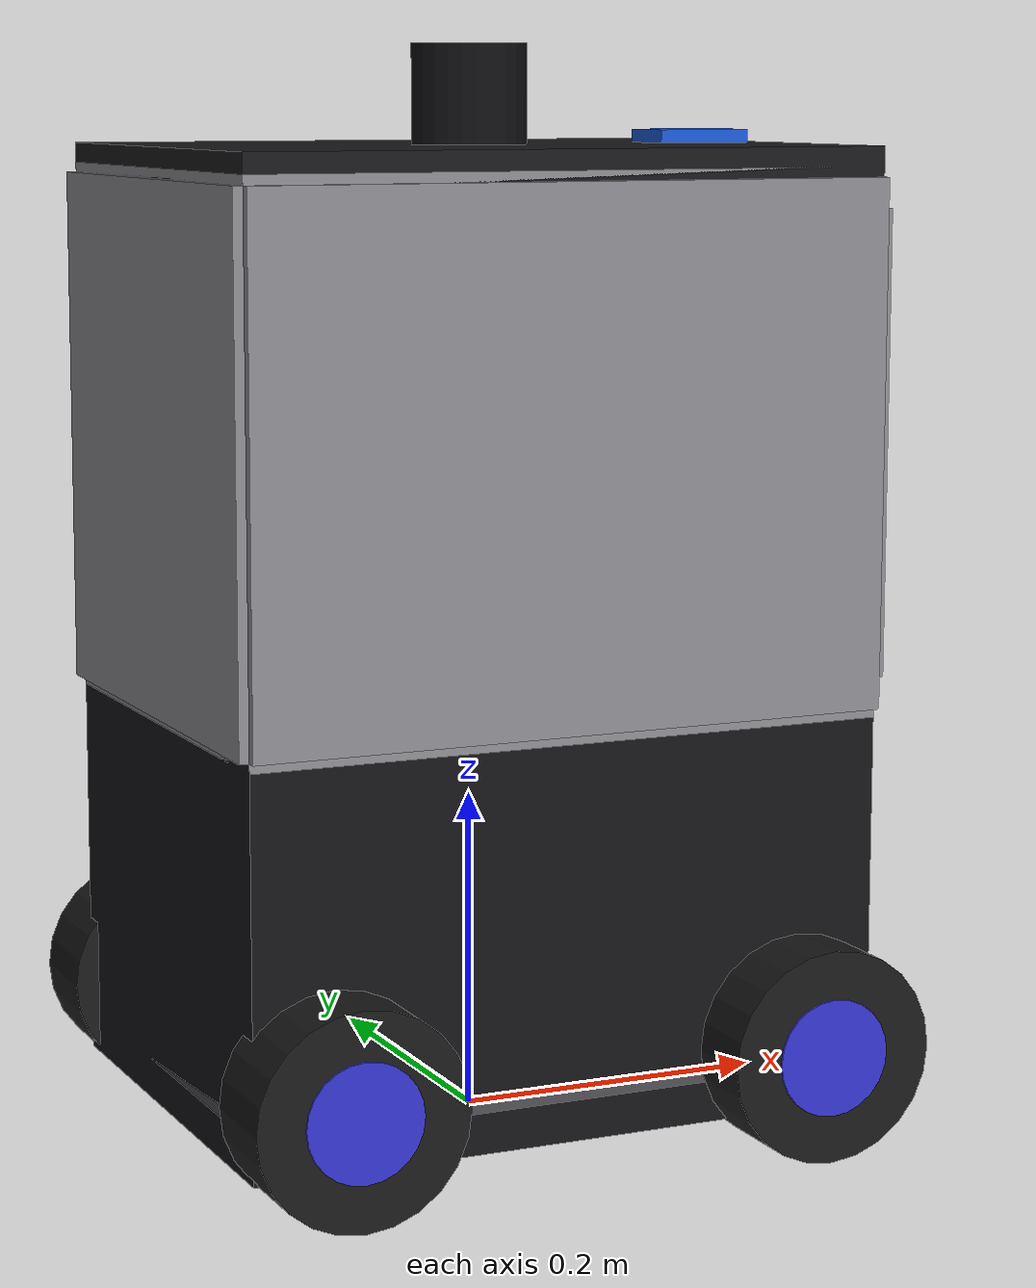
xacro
<?xml version="1.0"?>
<robot name="my_robot" xmlns:xacro="http://www.ros.org/wiki/xacro">

  <!-- ── Shared utilities ── -->
  <xacro:include filename="$(find my_robot_description)/urdf/properties.xacro"/>
  <xacro:include filename="$(find my_robot_description)/urdf/inertials.xacro"/>
  <xacro:include filename="$(find my_robot_description)/urdf/materials.xacro"/>

  <!-- ── Sub-components ── -->
  <xacro:include filename="$(find my_robot_description)/urdf/base/base.xacro"/>
  <xacro:include filename="$(find my_robot_description)/urdf/wheels/drive_wheel.xacro"/>
  <xacro:include filename="$(find my_robot_description)/urdf/sensors/lidar.xacro"/>
  <xacro:include filename="$(find my_robot_description)/urdf/sensors/imu.xacro"/>
  <xacro:include filename="$(find my_robot_description)/urdf/sensors/ultrasonic.xacro"/>

  <!-- ── Instantiate robot ── -->

  <!-- Enclosure (base_link static geometry) + split doors -->
  <xacro:base/>

  <!-- 4WD skid-steer drive wheels (one per corner) -->
  <xacro:drive_wheel prefix="front_left"  x_pos="${wheel_x_offset}"  y_reflect=" 1"/>
  <xacro:drive_wheel prefix="front_right" x_pos="${wheel_x_offset}"  y_reflect="-1"/>
  <xacro:drive_wheel prefix="rear_left"   x_pos="${-wheel_x_offset}" y_reflect=" 1"/>
  <xacro:drive_wheel prefix="rear_right"  x_pos="${-wheel_x_offset}" y_reflect="-1"/>

  <!-- Sensors -->
  <xacro:lidar/>        <!-- on the deck -->
  <xacro:imu/>          <!-- centre of base -->
  <xacro:ultrasonic/>   <!-- HC-SR04 on the front -->

</robot>

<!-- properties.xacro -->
<robot xmlns:xacro="http://www.ros.org/wiki/xacro">

  <!-- ── Math ── -->
  <xacro:property name="PI" value="3.14159265358979323846"/>

  <!-- ── Footprint envelope ── -->
  <xacro:property name="body_length"  value="0.400"/>   <!-- X 40 cm -->
  <xacro:property name="body_width"   value="0.300"/>   <!-- Y 30 cm -->
  <xacro:property name="panel_thickness" value="0.012"/>
  <xacro:property name="chassis_thickness" value="0.020"/>

  <!-- ── Drive wheels (130 mm Ø, 60 mm wide) ── -->
  <xacro:property name="wheel_radius" value="0.065"/>
  <xacro:property name="wheel_width"  value="0.060"/>
  <xacro:property name="wheel_y_offset" value="0.165"/>
  <!-- 4WD skid-steer half-wheelbase. PLACEHOLDER: real front↔rear axle / 2 -->
  <xacro:property name="wheel_x_offset" value="0.150"/>

  <!-- ── Ground clearance (wheels lowered) ── -->
  <xacro:property name="ground_clearance" value="0.020"/>
  <xacro:property name="struct_bottom_z" value="${-(wheel_radius - ground_clearance)}"/>

  <!-- ── Tier heights (stack up from struct_bottom_z) ── -->
  <xacro:property name="bottom_black_h" value="0.245"/>
  <xacro:property name="compartment_h"  value="0.317"/>   <!-- grey file compartment -->
  <xacro:property name="deck_h"         value="0.018"/>

  <!-- Derived Z centres/levels (from base_link) -->
  <xacro:property name="bottom_black_center_z" value="${struct_bottom_z + bottom_black_h/2.0}"/>
  <xacro:property name="bottom_black_top_z"    value="${struct_bottom_z + bottom_black_h}"/>
  <xacro:property name="compartment_center_z"  value="${bottom_black_top_z + compartment_h/2.0}"/>
  <xacro:property name="compartment_top_z"     value="${bottom_black_top_z + compartment_h}"/>
  <xacro:property name="deck_center_z"         value="${compartment_top_z + deck_h/2.0}"/>
  <xacro:property name="deck_top_z"            value="${compartment_top_z + deck_h}"/>                    <!-- 0.535 → 0.600 ground -->

  <!-- ── Split double-door (front of the GREY middle compartment) ── -->
  <xacro:property name="door_height"    value="0.280"/>
  <xacro:property name="door_width"     value="0.145"/>   <!-- each panel (Y) -->
  <xacro:property name="door_thickness" value="0.012"/>

  <!-- ── RFID reader (MFRC522) — centred on the deck front-edge line ── -->
  <xacro:property name="rfid_l" value="0.060"/>
  <xacro:property name="rfid_w" value="0.040"/>
  <xacro:property name="rfid_h" value="0.008"/>
  <xacro:property name="rfid_x" value="${body_length/2.0 - rfid_l/2.0 - 0.02}"/>  <!-- front-edge line -->

  <!-- ── HC-SR04 ultrasonic (blue PCB + 2 black transducers + silver crystal) ── -->
  <xacro:property name="us_pcb_w"    value="0.045"/>   <!-- board Y -->
  <xacro:property name="us_pcb_h"    value="0.020"/>   <!-- board Z -->
  <xacro:property name="us_pcb_t"    value="0.0015"/>  <!-- board X (thin) -->
  <xacro:property name="us_tx_radius" value="0.008"/>  <!-- transducer can -->
  <xacro:property name="us_tx_length" value="0.012"/>
  <xacro:property name="us_tx_sep"    value="0.026"/>  <!-- centre-to-centre -->
  <xacro:property name="us_height_above_ground" value="0.100"/>

  <!-- ── LTME-02A lidar (70 mm Ø, 60 mm tall) ── -->
  <xacro:property name="lidar_radius" value="0.035"/>
  <xacro:property name="lidar_height" value="0.060"/>

  <!-- ── Masses ── -->
  <xacro:property name="body_mass"  value="3.000"/>
  <xacro:property name="wheel_mass" value="0.200"/>
  <xacro:property name="lidar_mass" value="0.200"/>

</robot>

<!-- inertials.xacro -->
<!-- Reusable inertia macros. Origins are at the geometry centre of mass. -->
<robot xmlns:xacro="http://www.ros.org/wiki/xacro">

  <!-- Solid box: l=X, w=Y, h=Z -->
  <xacro:macro name="box_inertia" params="m l w h">
    <inertial>
      <mass value="${m}"/>
      <inertia
        ixx="${(1.0/12.0)*m*(w*w + h*h)}" ixy="0" ixz="0"
        iyy="${(1.0/12.0)*m*(l*l + h*h)}" iyz="0"
        izz="${(1.0/12.0)*m*(l*l + w*w)}"/>
    </inertial>
  </xacro:macro>

  <!-- Solid cylinder with principal axis along Z (e.g. lidar, column) -->
  <xacro:macro name="cylinder_inertia_z" params="m r h">
    <inertial>
      <mass value="${m}"/>
      <inertia
        ixx="${(1.0/12.0)*m*(3.0*r*r + h*h)}" ixy="0" ixz="0"
        iyy="${(1.0/12.0)*m*(3.0*r*r + h*h)}" iyz="0"
        izz="${0.5*m*r*r}"/>
    </inertial>
  </xacro:macro>

  <!-- Solid cylinder with principal axis along Y (drive wheel / caster wheel).
       r = wheel radius, h = wheel width along Y axis. -->
  <xacro:macro name="cylinder_inertia_y" params="m r h">
    <inertial>
      <mass value="${m}"/>
      <inertia
        ixx="${(1.0/12.0)*m*(3.0*r*r + h*h)}" ixy="0" ixz="0"
        iyy="${0.5*m*r*r}"                     iyz="0"
        izz="${(1.0/12.0)*m*(3.0*r*r + h*h)}"/>
    </inertial>
  </xacro:macro>

  <!-- Near-massless dummy inertia for virtual/structural links -->
  <xacro:macro name="null_inertia" params="">
    <inertial>
      <mass value="0.001"/>
      <inertia ixx="1e-6" ixy="0" ixz="0" iyy="1e-6" iyz="0" izz="1e-6"/>
    </inertial>
  </xacro:macro>

</robot>

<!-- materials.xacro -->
<!-- Named materials for RViz visualisation (chassis v3 palette). -->
<robot xmlns:xacro="http://www.ros.org/wiki/xacro">

  <!-- Enclosure / bottom box / structure = black -->
  <material name="enclosure_black">
    <color rgba="0.08 0.08 0.09 1.0"/>
  </material>

  <!-- File compartment (middle tier) + split doors = grey -->
  <material name="compartment_grey">
    <color rgba="0.55 0.55 0.57 1.0"/>
  </material>

  <!-- Top deck surface + lidar = black -->
  <material name="deck_black">
    <color rgba="0.10 0.10 0.11 1.0"/>
  </material>
  <material name="lidar_black">
    <color rgba="0.06 0.06 0.07 1.0"/>
  </material>

  <!-- RFID reader = blue -->
  <material name="rfid_blue">
    <color rgba="0.10 0.35 0.85 1.0"/>
  </material>

  <!-- HC-SR04: blue PCB, black transducers, silver crystal -->
  <material name="us_pcb_blue">
    <color rgba="0.12 0.45 0.75 1.0"/>
  </material>
  <material name="us_transducer_black">
    <color rgba="0.05 0.05 0.05 1.0"/>
  </material>
  <material name="crystal_silver">
    <color rgba="0.75 0.76 0.78 1.0"/>
  </material>

  <!-- Wheels = black, hub accent -->
  <material name="wheel_black">
    <color rgba="0.10 0.10 0.10 1.0"/>
  </material>
  <material name="wheel_hub_blue">
    <color rgba="0.20 0.20 0.80 1.0"/>
  </material>

  <!-- Chassis plate (hidden, low) -->
  <material name="chassis_grey">
    <color rgba="0.30 0.30 0.32 1.0"/>
  </material>

</robot>

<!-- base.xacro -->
<robot xmlns:xacro="http://www.ros.org/wiki/xacro">

  <xacro:macro name="base" params="">

    <!-- ── base_footprint (REP-105 ground projection) ── -->
    <link name="base_footprint"/>
    <joint name="base_joint" type="fixed">
      <parent link="base_footprint"/>
      <child  link="base_link"/>
      <origin xyz="0 0 ${wheel_radius}" rpy="0 0 0"/>
    </joint>

    <!-- ── base_link: carries the whole static enclosure ── -->
    <link name="base_link">

      <!-- chassis plate -->
      <visual><origin xyz="0 0 ${-chassis_thickness/2.0}"/>
        <geometry><box size="${body_length} ${body_width} ${chassis_thickness}"/></geometry>
        <material name="chassis_grey"/></visual>

      <!-- tier 1: solid BLACK bottom box -->
      <visual><origin xyz="0 0 ${bottom_black_center_z}"/>
        <geometry><box size="${body_length} ${body_width} ${bottom_black_h}"/></geometry>
        <material name="enclosure_black"/></visual>

      <!-- tier 2: GREY file compartment — 5 panels, front open for the doors -->
      <visual><origin xyz="0 0 ${compartment_center_z - compartment_h/2.0}"/>
        <geometry><box size="${body_length} ${body_width} ${panel_thickness}"/></geometry>
        <material name="compartment_grey"/></visual>                       <!-- floor -->
      <visual><origin xyz="0 0 ${compartment_center_z + compartment_h/2.0}"/>
        <geometry><box size="${body_length} ${body_width} ${panel_thickness}"/></geometry>
        <material name="compartment_grey"/></visual>                       <!-- ceiling -->
      <visual><origin xyz="${-body_length/2.0} 0 ${compartment_center_z}"/>
        <geometry><box size="${panel_thickness} ${body_width} ${compartment_h}"/></geometry>
        <material name="compartment_grey"/></visual>                       <!-- back -->
      <visual><origin xyz="0 ${body_width/2.0} ${compartment_center_z}"/>
        <geometry><box size="${body_length} ${panel_thickness} ${compartment_h}"/></geometry>
        <material name="compartment_grey"/></visual>                       <!-- left -->
      <visual><origin xyz="0 ${-body_width/2.0} ${compartment_center_z}"/>
        <geometry><box size="${body_length} ${panel_thickness} ${compartment_h}"/></geometry>
        <material name="compartment_grey"/></visual>                       <!-- right -->

      <!-- tier 3: BLACK deck board (top surface) -->
      <visual><origin xyz="0 0 ${deck_center_z}"/>
        <geometry><box size="${body_length} ${body_width} ${deck_h}"/></geometry>
        <material name="deck_black"/></visual>

      <!-- RFID reader (blue), centred on the deck front-edge line -->
      <visual><origin xyz="${rfid_x} 0 ${deck_top_z + rfid_h/2.0}"/>
        <geometry><box size="${rfid_l} ${rfid_w} ${rfid_h}"/></geometry>
        <material name="rfid_blue"/></visual>

      <collision><origin xyz="0 0 ${compartment_center_z}"/>
        <geometry><box size="${body_length} ${body_width} ${deck_top_z - struct_bottom_z}"/></geometry>
      </collision>
      <xacro:box_inertia m="${body_mass}" l="${body_length}" w="${body_width}" h="${deck_top_z - struct_bottom_z}"/>
    </link>

    <!-- ── Split double-door on the GREY compartment front (+X) ── -->
    <joint name="door_left_joint" type="revolute">
      <parent link="base_link"/>
      <child  link="door_left_link"/>
      <origin xyz="${body_length/2.0} ${body_width/2.0} ${compartment_center_z}" rpy="0 0 0"/>
      <axis xyz="0 0 1"/>
      <limit lower="0.0" upper="1.571" effort="2.0" velocity="2.0"/>
    </joint>
    <link name="door_left_link">
      <visual><origin xyz="0 ${-door_width/2.0} 0"/>
        <geometry><box size="${door_thickness} ${door_width} ${door_height}"/></geometry>
        <material name="compartment_grey"/></visual>
    </link>

    <joint name="door_right_joint" type="revolute">
      <parent link="base_link"/>
      <child  link="door_right_link"/>
      <origin xyz="${body_length/2.0} ${-body_width/2.0} ${compartment_center_z}" rpy="0 0 0"/>
      <axis xyz="0 0 1"/>
      <limit lower="-1.571" upper="0.0" effort="2.0" velocity="2.0"/>
    </joint>
    <link name="door_right_link">
      <visual><origin xyz="0 ${door_width/2.0} 0"/>
        <geometry><box size="${door_thickness} ${door_width} ${door_height}"/></geometry>
        <material name="compartment_grey"/></visual>
    </link>

  </xacro:macro>

</robot>

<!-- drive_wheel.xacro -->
<robot xmlns:xacro="http://www.ros.org/wiki/xacro">

  <xacro:macro name="drive_wheel" params="prefix y_reflect x_pos:=0">

    <link name="${prefix}_wheel_link">
      <visual>
        <!--
          Cylinder default axis is Z; rotate PI/2 around X so the spinning
          axis aligns with Y (REP-103: left/right axis).
        -->
        <origin xyz="0 0 0" rpy="${PI/2.0} 0 0"/>
        <geometry>
          <cylinder radius="${wheel_radius}" length="${wheel_width}"/>
        </geometry>
        <material name="wheel_black"/>
      </visual>

      <!-- Separate hub disc for the coloured alloy rim -->
      <visual>
        <origin xyz="0 0 0" rpy="${PI/2.0} 0 0"/>
        <geometry>
          <cylinder radius="${wheel_radius * 0.55}" length="${wheel_width * 1.05}"/>
        </geometry>
        <material name="wheel_hub_blue"/>
      </visual>

      <collision>
        <origin xyz="0 0 0" rpy="${PI/2.0} 0 0"/>
        <geometry>
          <cylinder radius="${wheel_radius}" length="${wheel_width}"/>
        </geometry>
      </collision>

      <!-- Inertia: cylinder axis along Y -->
      <xacro:cylinder_inertia_y m="${wheel_mass}" r="${wheel_radius}" h="${wheel_width}"/>
    </link>

    <joint name="${prefix}_wheel_joint" type="continuous">
      <parent link="base_link"/>
      <child  link="${prefix}_wheel_link"/>
      <origin xyz="${x_pos} ${y_reflect * wheel_y_offset} 0" rpy="0 0 0"/>
      <axis xyz="0 1 0"/>
    </joint>

  </xacro:macro>

</robot>

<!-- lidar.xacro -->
<robot xmlns:xacro="http://www.ros.org/wiki/xacro">

  <xacro:macro name="lidar" params="">

    <link name="laser">
      <visual>
        <origin xyz="0 0 ${lidar_height/2.0}" rpy="0 0 0"/>
        <geometry><cylinder radius="${lidar_radius}" length="${lidar_height}"/></geometry>
        <material name="lidar_black"/>
      </visual>
      <collision>
        <origin xyz="0 0 ${lidar_height/2.0}" rpy="0 0 0"/>
        <geometry><cylinder radius="${lidar_radius}" length="${lidar_height}"/></geometry>
      </collision>
      <xacro:cylinder_inertia_z m="${lidar_mass}" r="${lidar_radius}" h="${lidar_height}"/>
    </link>

    <!-- On the deck top surface, centred (270° FOV faces forward). -->
    <joint name="laser_joint" type="fixed">
      <parent link="base_link"/>
      <child  link="laser"/>
      <origin xyz="0 0 ${deck_top_z}" rpy="0 0 0"/>
    </joint>

  </xacro:macro>

</robot>

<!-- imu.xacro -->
<robot xmlns:xacro="http://www.ros.org/wiki/xacro">

  <xacro:macro name="imu" params="">

    <link name="imu_link">
      <visual>
        <geometry><box size="0.025 0.020 0.005"/></geometry>
        <material name="enclosure_black"/>
      </visual>
    </link>

    <joint name="imu_joint" type="fixed">
      <parent link="base_link"/>
      <child  link="imu_link"/>
      <!-- Centre of the base, just above the chassis plate. -->
      <origin xyz="0 0 0.008" rpy="0 0 0"/>
    </joint>

  </xacro:macro>

</robot>

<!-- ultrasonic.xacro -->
<robot xmlns:xacro="http://www.ros.org/wiki/xacro">

  <xacro:macro name="ultrasonic" params="">

    <link name="ultrasonic_link">
      <!-- blue PCB -->
      <visual>
        <origin xyz="0 0 0" rpy="0 0 0"/>
        <geometry><box size="${us_pcb_t} ${us_pcb_w} ${us_pcb_h}"/></geometry>
        <material name="us_pcb_blue"/>
      </visual>
      <!-- left transducer (black cylinder, protruding forward) -->
      <visual>
        <origin xyz="${us_tx_length/2.0} ${us_tx_sep/2.0} 0" rpy="0 ${PI/2.0} 0"/>
        <geometry><cylinder radius="${us_tx_radius}" length="${us_tx_length}"/></geometry>
        <material name="us_transducer_black"/>
      </visual>
      <!-- right transducer -->
      <visual>
        <origin xyz="${us_tx_length/2.0} ${-us_tx_sep/2.0} 0" rpy="0 ${PI/2.0} 0"/>
        <geometry><cylinder radius="${us_tx_radius}" length="${us_tx_length}"/></geometry>
        <material name="us_transducer_black"/>
      </visual>
      <!-- silver crystal oscillator between the transducers -->
      <visual>
        <origin xyz="${us_pcb_t} 0 0" rpy="0 0 0"/>
        <geometry><box size="0.005 0.010 0.005"/></geometry>
        <material name="crystal_silver"/>
      </visual>
    </link>

    <joint name="ultrasonic_joint" type="fixed">
      <parent link="base_link"/>
      <child  link="ultrasonic_link"/>
      <origin xyz="${body_length/2.0} 0 ${us_height_above_ground - wheel_radius}" rpy="0 0 0"/>
    </joint>

  </xacro:macro>

</robot>
